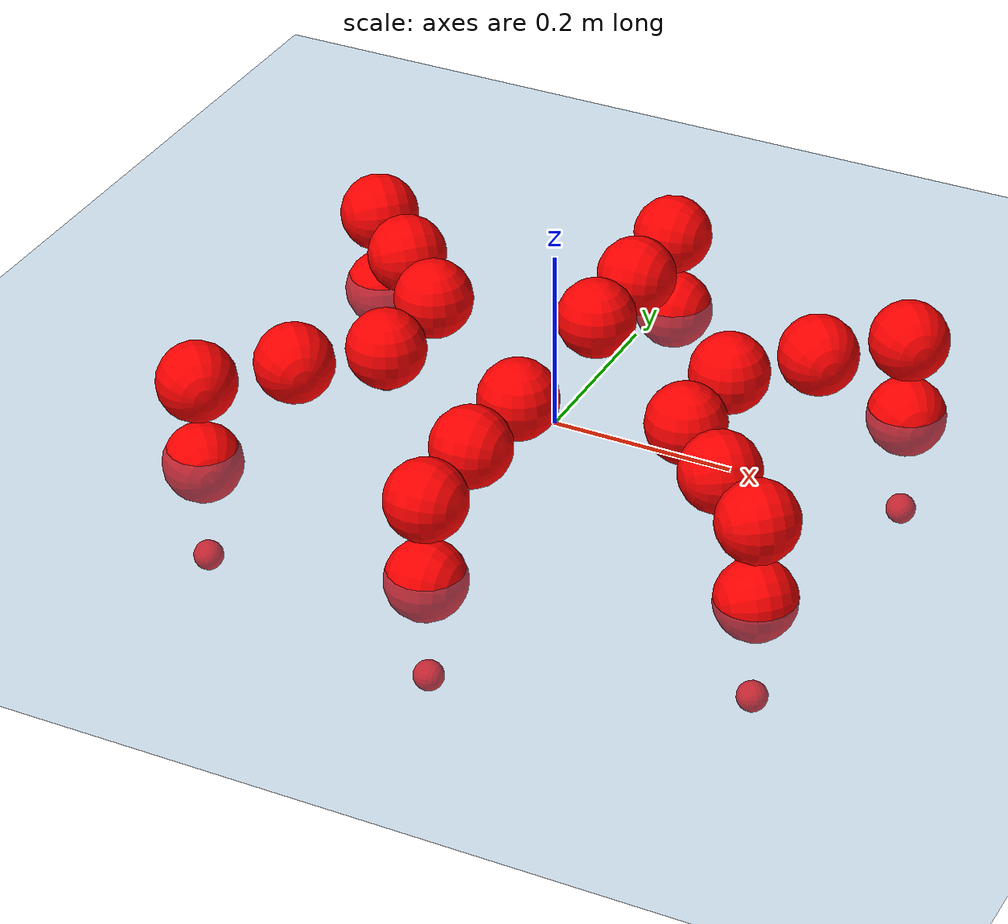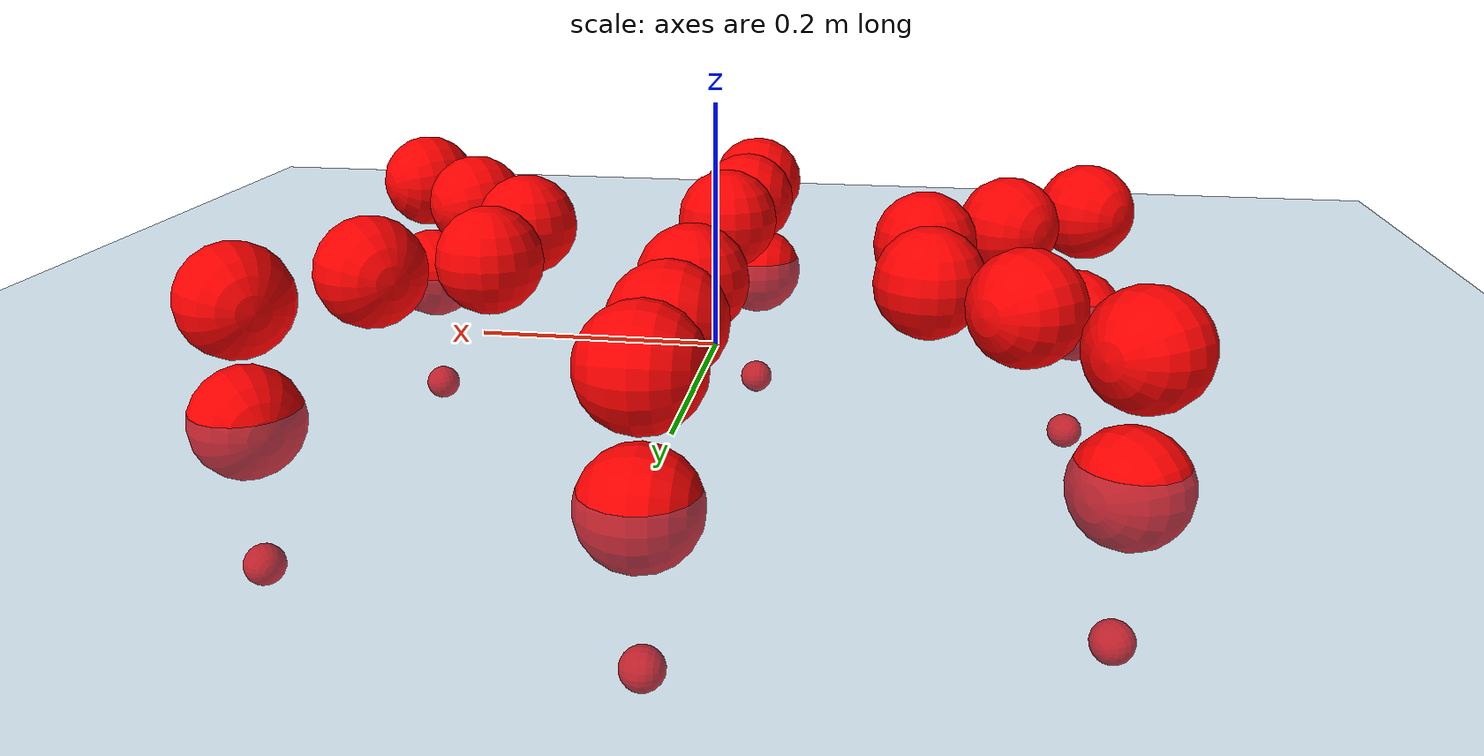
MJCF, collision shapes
<mujoco model="Golem">
  <compiler angle="radian" assetdir="assets" balanceinertia="true" inertiafromgeom="false"/>

  <option timestep="0.005" density="1.2" viscosity="2e-05"/>

  <size nkey="1"/>

  <visual>
    <quality shadowsize="8192"/>
    <map shadowclip="0.5"/>
  </visual>

  <default>
    <default class="/">
      <joint armature="0.01" damping="0.01" frictionloss="0.01"/>
      <geom contype="0" conaffinity="0" group="1" solref="-1000 -80"/>
      <site size="0.01 0.005 0.005" group="5"/>
      <general forcelimited="true" biastype="affine" gainprm="25" biasprm="0 -25 -0.5"/>
      <default class="visual">
        <geom type="mesh" group="2"/>
      </default>
      <default class="collision">
        <geom group="3"/>
      </default>
      <default class="foot">
        <geom size="0.01 0 0" condim="6" group="4" priority="1" solimp="0.015 1 0.01"/>
      </default>
      <default class="reward_collision_sphere">
        <geom group="5" rgba="1 0 0 1"/>
      </default>
    </default>
  </default>

  <asset>
    <texture type="skybox" colorspace="auto" name="//unnamed_texture_0" builtin="gradient" rgb1="0.95 0.95 0.95" rgb2="0.95 0.95 0.95" width="100" height="600"/>
    <texture type="2d" colorspace="auto" name="texplane" builtin="checker" rgb1="0.345 0.575 0.748" rgb2="0.345 0.575 0.748" markrgb="1 1 1" width="512" height="512"/>
    <material name="MatPlane" class="/" texture="texplane" texuniform="true" texrepeat="2 2" specular="0.9"/>
    <mesh name="body" class="/" file="body.stl" scale="0.001 0.001 0.001"/>
    <mesh name="coxa" class="/" file="coxa.stl" scale="0.001 0.001 0.001"/>
    <mesh name="femur" class="/" file="femur.stl" scale="0.001 0.001 0.001"/>
    <mesh name="tibia" class="/" file="tibia.stl" scale="0.001 0.001 0.001"/>
    <mesh name="tarsus" class="/" file="tarsus.stl" scale="0.001 0.001 0.001"/>
  </asset>

  <worldbody>
    <geom name="floor" class="/" size="100 100 0.125" type="plane" group="0" material="MatPlane"/>
    <light name="toplight_shadow" class="/" pos="0 0 5" dir="0.0990148 0.0990148 -0.990148" type="directional" ambient="0.04 0.04 0.04" diffuse="0.55 0.55 0.55" specular="0.12 0.12 0.12"/>
    <light name="toplight_fill" class="/" pos="0 0 5" dir="0.0990148 0.0990148 -0.990148" type="directional" castshadow="false" ambient="0.04 0.04 0.04" diffuse="0.3 0.3 0.3" specular="0.08 0.08 0.08"/>
    <body name="trunk" pos="0.00090083 -0.000790116 0.000847414" quat="0.999998 -0.00104181 -0.000879136 0.00133835">
      <inertial pos="-0.00210978 -0.00497775 -0.00526044" quat="0.999993 -0.00150392 0.00295259 0.00186074" mass="4.84643" diaginertia="0.0166947 0.0072225 0.0283593"/>
      <joint name="//unnamed_joint_0" type="free"/>
      <geom name="//unnamed_geom_1" class="/" pos="0 0 0.0778119" quat="1 0 0 0" type="mesh" rgba="0.9 0.9 0.9 1" mesh="body"/>
      <site name="imu" class="/" pos="0.143937 -0.0105761 0.115673" size="0.0107993"/>
      <camera name="track" class="/" pos="0 -1.86355 0" quat="0.707107 0.707107 0 0" mode="trackcom"/>
      <camera name="ego_camera" class="/" pos="0.141987 0 0.121581" quat="-0.5 -0.5 0.5 0.5"/>
      <body name="coxa_RR" pos="-0.192169 -0.0798292 0.077976" quat="0.382533 -0.000350203 0.00121771 -0.923941">
        <inertial pos="3.07785e-05 0.00164631 0.00159707" quat="0.999677 -0.0175807 -0.0155273 0.00981881" mass="0.228634" diaginertia="0.0150271 0.00693152 0.024746"/>
        <joint name="coxa_joint_RR" class="/" pos="0 0 0" axis="-0.00796415 0.00168897 -0.999967" stiffness="0.00114881" range="-3.15082 3.23823" armature="0.00827747" damping="0" frictionloss="0.0112423"/>
        <geom name="//unnamed_geom_2" class="/" type="mesh" rgba="0.2 0.2 0.2 1" mesh="coxa"/>
        <geom name="//unnamed_geom_3" class="reward_collision_sphere" size="0.0431972" pos="-0.0327663 0 0"/>
        <body name="femur_RR" pos="0.0659322 -0.0025143 0.000676283" quat="0.499792 -0.499915 0.500165 0.500128">
          <inertial pos="-0.00325828 0.00166092 0.000324667" quat="0.999893 0.00658043 0.0119361 0.00524124" mass="0.245133" diaginertia="0.0151885 0.00685026 0.0268512"/>
          <joint name="femur_joint_RR" class="/" pos="0 0 0" axis="0.00282594 -0.00413725 -0.999987" range="-3.12763 3.13598" armature="0.0106501" damping="0.0414524" frictionloss="0.0117663"/>
          <geom name="//unnamed_geom_4" class="/" type="mesh" rgba="0.9 0.9 0.9 1" mesh="femur"/>
          <geom name="//unnamed_geom_5" class="reward_collision_sphere" size="0.0431972"/>
          <body name="tibia_RR" pos="0.00109794 -0.104447 0.000753626" quat="-0.000488062 1 7.97759e-05 -3.1214e-05">
            <inertial pos="0.00108243 0.00230049 0.0010334" quat="0.999963 -0.00690133 -0.000830985 -0.00498733" mass="0.234451" diaginertia="0.0157985 0.00685637 0.02595"/>
            <joint name="tibia_joint_RR" class="/" pos="0 0 0" axis="0.000167849 0.00933191 0.999956" range="-3.17768 3.14204" armature="0.0107423" damping="0.0140538" frictionloss="0.0106906"/>
            <geom name="//unnamed_geom_6" class="/" type="mesh" rgba="0.2 0.2 0.2 1" mesh="tibia"/>
            <geom name="//unnamed_geom_7" class="reward_collision_sphere" size="0.0431972"/>
            <body name="tarsus_RR" pos="0.0989353 -0.00133113 -0.00075577" quat="1 3.44156e-05 2.60157e-05 0.000124576">
              <inertial pos="0.0684566 -0.00101381 -0.00177218" quat="0.50046 0.496721 0.501348 0.501456" mass="0.241598" diaginertia="0.014407 0.00662069 0.0256503"/>
              <joint name="tarsus_joint_RR" class="/" pos="0 0 0" axis="0.0108327 -0.017754 0.999784" stiffness="0.00354866" range="-3.14392 3.14081" armature="0.0118585" damping="0.0512529" frictionloss="0.0116724"/>
              <geom name="//unnamed_geom_8" class="/" type="mesh" rgba="0.9 0.9 0.9 1" mesh="tarsus"/>
              <geom name="foot_1" class="foot" size="0.00937281" pos="0.122327 0 0" quat="0 -0.707107 0 0.707107"/>
              <geom name="//unnamed_geom_10" class="reward_collision_sphere" size="0.0431972"/>
              <geom name="//unnamed_geom_11" class="reward_collision_sphere" size="0.016199" pos="0.117412 0 0"/>
              <site name="foot_1" class="foot" pos="0.122327 0 0" quat="0 -0.707107 0 0.707107" size="0.0107993"/>
            </body>
          </body>
        </body>
      </body>
      <body name="coxa_RM" pos="0.00319147 -0.126071 0.0834872" quat="0.706911 -8.63653e-05 0.000861989 -0.707302">
        <inertial pos="0.0029746 0.00093577 -0.00225321" quat="1 -0.000153289 0.000730279 0.000383631" mass="0.239127" diaginertia="0.0146323 0.00683487 0.0255094"/>
        <joint name="coxa_joint_RM" class="/" pos="0 0 0" axis="0.000847434 0.00184254 -0.999998" stiffness="0.00367735" range="-3.16908 3.15791" armature="0.0103461" damping="0.0188884" frictionloss="0.0109738"/>
        <geom name="//unnamed_geom_12" class="/" type="mesh" rgba="0.2 0.2 0.2 1" mesh="coxa"/>
        <geom name="//unnamed_geom_13" class="reward_collision_sphere" size="0.0431972" pos="-0.0327663 0 0"/>
        <body name="femur_RM" pos="0.063757 -0.00450767 -0.00286623" quat="0.499941 -0.500283 0.499785 0.49999">
          <inertial pos="0.00165153 -0.000827002 0.00195953" quat="0.999758 -0.00684276 0.0190694 0.00851805" mass="0.272688" diaginertia="0.0162301 0.00752016 0.0273321"/>
          <joint name="femur_joint_RM" class="/" pos="0 0 0" axis="0.00077382 0.000418818 -1" range="-3.04616 3.0887" armature="0.0114185" damping="0.0277271" frictionloss="0.0107663"/>
          <geom name="//unnamed_geom_14" class="/" type="mesh" rgba="0.9 0.9 0.9 1" mesh="femur"/>
          <geom name="//unnamed_geom_15" class="reward_collision_sphere" size="0.0431972"/>
          <body name="tibia_RM" pos="0.00281037 -0.101557 0.00216157" quat="-0.00110618 0.999997 -2.86883e-05 0.00217783">
            <inertial pos="0.00052461 0.000932188 -0.00251402" quat="0.99998 0.00253998 0.00360962 0.00445071" mass="0.253392" diaginertia="0.015152 0.0071256 0.027541"/>
            <joint name="tibia_joint_RM" class="/" pos="0 0 0" axis="0.0108429 -0.00276731 0.999937" stiffness="0.0194822" range="-3.13431 3.13321" armature="0.00960122" damping="0.0121685" frictionloss="0.00942256"/>
            <geom name="//unnamed_geom_16" class="/" type="mesh" rgba="0.2 0.2 0.2 1" mesh="tibia"/>
            <geom name="//unnamed_geom_17" class="reward_collision_sphere" size="0.0431972"/>
            <body name="tarsus_RM" pos="0.0945475 0.00138657 0.001392" quat="0.999999 -0.000567808 -0.000303696 -0.00138656">
              <inertial pos="0.0657316 0.00166839 -0.000100794" quat="0.50059 0.507427 0.500076 0.491783" mass="0.254519" diaginertia="0.0154386 0.00710263 0.0272971"/>
              <joint name="tarsus_joint_RM" class="/" pos="0 0 0" axis="-0.000410808 0.0108491 0.999941" stiffness="0.00550605" range="-3.12823 3.04287" armature="0.0104493" damping="0.0101189" frictionloss="0.0133961"/>
              <geom name="//unnamed_geom_18" class="/" type="mesh" rgba="0.9 0.9 0.9 1" mesh="tarsus"/>
              <geom name="foot_2" class="foot" size="0.0118898" pos="0.122327 0 0" quat="0 -0.707107 0 0.707107"/>
              <geom name="//unnamed_geom_20" class="reward_collision_sphere" size="0.0431972"/>
              <geom name="//unnamed_geom_21" class="reward_collision_sphere" size="0.016199" pos="0.117412 0 0"/>
              <site name="foot_2" class="foot" pos="0.122327 0 0" quat="0 -0.707107 0 0.707107" size="0.0107993"/>
            </body>
          </body>
        </body>
      </body>
      <body name="coxa_RF" pos="0.19736 -0.0794387 0.0809125" quat="0.924028 0.00135744 0.000567459 -0.382322">
        <inertial pos="-0.00328132 -0.00354708 0.000212443" quat="0.999999 -0.000623083 -0.000661965 -0.000765871" mass="0.256895" diaginertia="0.0148924 0.00694674 0.0262149"/>
        <joint name="coxa_joint_RF" class="/" pos="0 0 0" axis="-0.00959697 0.000434221 -0.999954" stiffness="0.0286549" range="-3.11099 3.21045" armature="0.00961655" damping="0.00082886" frictionloss="0.0119266"/>
        <geom name="//unnamed_geom_22" class="/" type="mesh" rgba="0.2 0.2 0.2 1" mesh="coxa"/>
        <geom name="//unnamed_geom_23" class="reward_collision_sphere" size="0.0431972" pos="-0.0327663 0 0"/>
        <body name="femur_RF" pos="0.0648162 -0.000985186 0.00173828" quat="0.500074 -0.500869 0.500124 0.498931">
          <inertial pos="0.00127747 -0.000556315 -0.00432579" quat="0.999934 -0.00660393 -0.00537289 -0.00770325" mass="0.264928" diaginertia="0.0164268 0.00737161 0.0291977"/>
          <joint name="femur_joint_RF" class="/" pos="0 0 0" axis="-0.0126735 0.01954 -0.999729" range="-3.17288 3.12517" armature="0.00801076" damping="0.0157748" frictionloss="0.0101247"/>
          <geom name="//unnamed_geom_24" class="/" type="mesh" rgba="0.9 0.9 0.9 1" mesh="femur"/>
          <geom name="//unnamed_geom_25" class="reward_collision_sphere" size="0.0431972"/>
          <body name="tibia_RF" pos="-0.00396343 -0.0993361 0.000705816" quat="4.57845e-05 1 -0.000285093 -0.000276631">
            <inertial pos="0.000831686 0.000294732 0.00024024" quat="0.999971 -0.0058684 -0.00217165 0.00426903" mass="0.248426" diaginertia="0.0163045 0.00712674 0.025352"/>
            <joint name="tibia_joint_RF" class="/" pos="0 0 0" axis="-0.00453842 0.00338547 0.999984" stiffness="0.00205112" range="-3.15101 3.0672" armature="0.0119987" damping="0.00326068" frictionloss="0.0119873"/>
            <geom name="//unnamed_geom_26" class="/" type="mesh" rgba="0.2 0.2 0.2 1" mesh="tibia"/>
            <geom name="//unnamed_geom_27" class="reward_collision_sphere" size="0.0431972"/>
            <body name="tarsus_RF" pos="0.0927299 -0.000646279 -0.000687955" quat="0.999997 -0.00202529 -0.00104495 -8.62588e-06">
              <inertial pos="0.0636313 0.000251376 0.000996111" quat="0.500215 0.499996 0.500201 0.499588" mass="0.250372" diaginertia="0.0153472 0.00691509 0.0274171"/>
              <joint name="tarsus_joint_RF" class="/" pos="0 0 0" axis="0.0064678 0.00973815 0.999932" range="-3.15166 3.11627" armature="0.0108213" damping="0.0122604" frictionloss="0.0109124"/>
              <geom name="//unnamed_geom_28" class="/" type="mesh" rgba="0.9 0.9 0.9 1" mesh="tarsus"/>
              <geom name="foot_3" class="foot" size="0.00963917" pos="0.122327 0 0" quat="0 -0.707107 0 0.707107"/>
              <geom name="//unnamed_geom_30" class="reward_collision_sphere" size="0.0431972"/>
              <geom name="//unnamed_geom_31" class="reward_collision_sphere" size="0.016199" pos="0.117412 0 0"/>
              <site name="foot_3" class="foot" pos="0.122327 0 0" quat="0 -0.707107 0 0.707107" size="0.0107993"/>
            </body>
          </body>
        </body>
      </body>
      <body name="coxa_LR" pos="-0.196541 0.0817628 0.0762145" quat="0.383288 -0.00122573 -0.000142021 0.923628">
        <inertial pos="-4.74803e-05 -0.00065152 0.00264116" quat="1 0.000280192 -0.000239167 -3.16e-05" mass="0.247696" diaginertia="0.0160175 0.00722541 0.0281458"/>
        <joint name="coxa_joint_LR" class="/" pos="0 0 0" axis="-0.0123074 0.00169371 -0.999923" range="-3.17858 3.13476" armature="0.0100534" damping="0.00346609" frictionloss="0.0105709"/>
        <geom name="//unnamed_geom_32" class="/" type="mesh" rgba="0.2 0.2 0.2 1" mesh="coxa"/>
        <geom name="//unnamed_geom_33" class="reward_collision_sphere" size="0.0431972" pos="-0.0327663 0 0"/>
        <body name="femur_LR" pos="0.0620851 0.000482723 0.00379599" quat="0.499338 -0.500166 0.499682 0.500812">
          <inertial pos="-0.000211555 -0.0022701 0.0010597" quat="0.99996 0.00285744 0.00526584 0.00662956" mass="0.258608" diaginertia="0.0157552 0.00695652 0.026651"/>
          <joint name="femur_joint_LR" class="/" pos="0 0 0" axis="0.0149253 0.00577912 0.999872" stiffness="0.00715664" range="-3.07955 3.08177" armature="0.0112063" damping="0.0227171" frictionloss="0.00949166"/>
          <geom name="//unnamed_geom_34" class="/" type="mesh" rgba="0.9 0.9 0.9 1" mesh="femur"/>
          <geom name="//unnamed_geom_35" class="reward_collision_sphere" size="0.0431972"/>
          <body name="tibia_LR" pos="0.00226537 -0.102564 0.00048429" quat="0.00108559 0.999999 0.000464613 -0.000315873">
            <inertial pos="0.00472742 -0.00220204 0.0034913" quat="0.999933 0.0112951 -0.000180043 0.00233431" mass="0.251847" diaginertia="0.0150175 0.00661124 0.0258749"/>
            <joint name="tibia_joint_LR" class="/" pos="0 0 0" axis="-0.000162846 -0.000661406 -1" stiffness="0.00480865" range="-3.20831 3.11003" armature="0.0101949" damping="0.0112379" frictionloss="0.0096768"/>
            <geom name="//unnamed_geom_36" class="/" type="mesh" rgba="0.2 0.2 0.2 1" mesh="tibia"/>
            <geom name="//unnamed_geom_37" class="reward_collision_sphere" size="0.0431972"/>
            <body name="tarsus_LR" pos="0.0972173 -0.000205883 0.00244348" quat="1 -0.000222485 0.000226465 0.000220807">
              <inertial pos="0.0674591 -0.00105708 0.00246527" quat="0.499127 0.500899 0.502737 0.497219" mass="0.238546" diaginertia="0.0148596 0.00674366 0.025524"/>
              <joint name="tarsus_joint_LR" class="/" pos="0 0 0" axis="-0.000701381 -0.0178633 -0.99984" range="-3.18795 3.16764" armature="0.00940176" damping="0.0216154" frictionloss="0.0100952"/>
              <geom name="//unnamed_geom_38" class="/" type="mesh" rgba="0.9 0.9 0.9 1" mesh="tarsus"/>
              <geom name="foot_4" class="foot" size="0.011854" pos="0.122327 0 0" quat="0.707107 0 -0.707107 0"/>
              <geom name="//unnamed_geom_40" class="reward_collision_sphere" size="0.0431972"/>
              <geom name="//unnamed_geom_41" class="reward_collision_sphere" size="0.016199" pos="0.117412 0 0"/>
              <site name="foot_4" class="foot" pos="0.122327 0 0" quat="0.707107 0 -0.707107 0" size="0.0107993"/>
            </body>
          </body>
        </body>
      </body>
      <body name="coxa_LM" pos="0.0029503 0.125028 0.0801375" quat="0.706698 -0.000226818 -0.000651788 0.707515">
        <inertial pos="-0.0032974 -0.00444616 0.00250334" quat="1 6.55572e-05 3.57104e-05 -1.73079e-05" mass="0.253368" diaginertia="0.0161119 0.0070713 0.0268562"/>
        <joint name="coxa_joint_LM" class="/" pos="0 0 0" axis="0.00615704 0.0135527 -0.999889" stiffness="0.00671288" range="-3.13562 3.13484" armature="0.00956969" damping="0.0326549" frictionloss="0.0110019"/>
        <geom name="//unnamed_geom_42" class="/" type="mesh" rgba="0.2 0.2 0.2 1" mesh="coxa"/>
        <geom name="//unnamed_geom_43" class="reward_collision_sphere" size="0.0431972" pos="-0.0327663 0 0"/>
        <body name="femur_LM" pos="0.0677005 -0.000149855 -0.000904521" quat="0.499202 -0.500136 0.499058 0.501599">
          <inertial pos="0.000353724 0.000265485 -0.00264058" quat="0.999975 -0.00649523 0.000285989 0.00287589" mass="0.259897" diaginertia="0.0157622 0.00728389 0.0282883"/>
          <joint name="femur_joint_LM" class="/" pos="0 0 0" axis="0.00380448 -0.0124608 0.999915" range="-3.10202 3.13209" armature="0.0132754" damping="0.0174227" frictionloss="0.0115271"/>
          <geom name="//unnamed_geom_44" class="/" type="mesh" rgba="0.9 0.9 0.9 1" mesh="femur"/>
          <geom name="//unnamed_geom_45" class="reward_collision_sphere" size="0.0431972"/>
          <body name="tibia_LM" pos="-0.000944273 -0.0971418 0.0010978" quat="7.47515e-05 1 -0.000472366 -8.28197e-05">
            <inertial pos="0.00233157 -0.00267027 0.00121819" quat="0.99994 0.00555273 0.00377942 0.00862837" mass="0.261489" diaginertia="0.0156451 0.00683345 0.0251912"/>
            <joint name="tibia_joint_LM" class="/" pos="0 0 0" axis="0.00080191 -0.00091608 -0.999999" range="-3.18147 3.11917" armature="0.0109399" damping="0.0194309" frictionloss="0.0106984"/>
            <geom name="//unnamed_geom_46" class="/" type="mesh" rgba="0.2 0.2 0.2 1" mesh="tibia"/>
            <geom name="//unnamed_geom_47" class="reward_collision_sphere" size="0.0431972"/>
            <body name="tarsus_LM" pos="0.0949194 0.00110672 0.00224839" quat="1 0.000395727 7.03372e-05 7.25794e-05">
              <inertial pos="0.0621201 -0.000851573 -0.000376667" quat="0.496609 0.501184 0.501556 0.500635" mass="0.229268" diaginertia="0.0152374 0.00693992 0.0264487"/>
              <joint name="tarsus_joint_LM" class="/" pos="0 0 0" axis="0.00110605 0.00783251 -0.999969" range="-3.14503 3.1494" armature="0.0107969" damping="0" frictionloss="0.0106779"/>
              <geom name="//unnamed_geom_48" class="/" type="mesh" rgba="0.9 0.9 0.9 1" mesh="tarsus"/>
              <geom name="foot_5" class="foot" size="0.0118199" pos="0.122327 0 0" quat="0.707107 0 -0.707107 0"/>
              <geom name="//unnamed_geom_50" class="reward_collision_sphere" size="0.0431972"/>
              <geom name="//unnamed_geom_51" class="reward_collision_sphere" size="0.016199" pos="0.117412 0 0"/>
              <site name="foot_5" class="foot" pos="0.122327 0 0" quat="0.707107 0 -0.707107 0" size="0.0107993"/>
            </body>
          </body>
        </body>
      </body>
      <body name="coxa_LF" pos="0.196139 0.0781081 0.0785592" quat="0.923874 0.000104594 7.18479e-06 0.382697">
        <inertial pos="-0.000775318 0.00263502 0.000531699" quat="0.999999 -0.000961222 -0.000244874 -0.000755709" mass="0.252786" diaginertia="0.0153206 0.00679967 0.0258035"/>
        <joint name="coxa_joint_LF" class="/" pos="0 0 0" axis="0.0161416 0.0116958 -0.999801" range="-3.10658 3.10953" armature="0.0118881" damping="0.00865863" frictionloss="0.010622"/>
        <geom name="//unnamed_geom_52" class="/" type="mesh" rgba="0.2 0.2 0.2 1" mesh="coxa"/>
        <geom name="//unnamed_geom_53" class="reward_collision_sphere" size="0.0431972" pos="-0.0327663 0 0"/>
        <body name="femur_LF" pos="0.0643748 -0.00470162 0.00488792" quat="0.499127 -0.499657 0.500204 0.50101">
          <inertial pos="0.00231037 0.00129523 -0.0025026" quat="0.999999 -0.00105506 0.000606029 -0.000362337" mass="0.247287" diaginertia="0.015245 0.00709757 0.0274383"/>
          <joint name="femur_joint_LF" class="/" pos="0 0 0" axis="-0.0099941 -0.00201692 0.999948" range="-3.1409 3.20058" armature="0.0117358" damping="0.0138066" frictionloss="0.0121928"/>
          <geom name="//unnamed_geom_54" class="/" type="mesh" rgba="0.9 0.9 0.9 1" mesh="femur"/>
          <geom name="//unnamed_geom_55" class="reward_collision_sphere" size="0.0431972"/>
          <body name="tibia_LF" pos="0.00358429 -0.103425 0.00134678" quat="0.000441952 0.999999 -9.69939e-05 -0.00114266">
            <inertial pos="0.00235451 0.00133712 0.0023553" quat="0.999872 0.0112751 -0.0067034 0.00914983" mass="0.257532" diaginertia="0.0156203 0.00717891 0.0273706"/>
            <joint name="tibia_joint_LF" class="/" pos="0 0 0" axis="0.00279892 0.00194185 -0.999994" range="-3.14289 3.12336" armature="0.0135037" damping="0.0282642" frictionloss="0.0109114"/>
            <geom name="//unnamed_geom_56" class="/" type="mesh" rgba="0.2 0.2 0.2 1" mesh="tibia"/>
            <geom name="//unnamed_geom_57" class="reward_collision_sphere" size="0.0431972"/>
            <body name="tarsus_LF" pos="0.0932947 0.00142539 0.000206008" quat="0.999997 0.00228454 -9.46539e-05 -0.000845531">
              <inertial pos="0.064021 0.00290009 0.00128369" quat="0.502607 0.500044 0.500424 0.496908" mass="0.259764" diaginertia="0.0153301 0.00717561 0.0261979"/>
              <joint name="tarsus_joint_LF" class="/" pos="0 0 0" axis="-0.0131045 -0.00351567 -0.999908" stiffness="0.00155436" range="-3.18759 3.17898" armature="0.0117923" damping="0" frictionloss="0.010814"/>
              <geom name="//unnamed_geom_58" class="/" type="mesh" rgba="0.9 0.9 0.9 1" mesh="tarsus"/>
              <geom name="foot_6" class="foot" size="0.0114852" pos="0.122327 0 0" quat="0.707107 0 -0.707107 0"/>
              <geom name="//unnamed_geom_60" class="reward_collision_sphere" size="0.0431972"/>
              <geom name="//unnamed_geom_61" class="reward_collision_sphere" size="0.016199" pos="0.117412 0 0"/>
              <site name="foot_6" class="foot" pos="0.122327 0 0" quat="0.707107 0 -0.707107 0" size="0.0107993"/>
            </body>
          </body>
        </body>
      </body>
    </body>
  </worldbody>

  <contact>
    <pair class="/" geom1="floor" geom2="foot_1" name="//unnamed_contact_0"/>
    <pair class="/" geom1="floor" geom2="foot_2" name="//unnamed_contact_1"/>
    <pair class="/" geom1="floor" geom2="foot_3" name="//unnamed_contact_2"/>
    <pair class="/" geom1="floor" geom2="foot_4" name="//unnamed_contact_3"/>
    <pair class="/" geom1="floor" geom2="foot_5" name="//unnamed_contact_4"/>
    <pair class="/" geom1="floor" geom2="foot_6" name="//unnamed_contact_5"/>
  </contact>

  <actuator>
    <general name="coxa_joint_RR" class="/" joint="coxa_joint_RR" forcerange="-8.39091 8.39091" gainprm="26.1585" biasprm="0 -26.1585 -0.53209"/>
    <general name="femur_joint_RR" class="/" joint="femur_joint_RR" forcerange="-7.86865 7.86865" gainprm="26.1585" biasprm="0 -26.1585 -0.53209"/>
    <general name="tibia_joint_RR" class="/" joint="tibia_joint_RR" forcerange="-8.0591 8.0591" gainprm="26.1585" biasprm="0 -26.1585 -0.53209"/>
    <general name="tarsus_joint_RR" class="/" joint="tarsus_joint_RR" forcerange="-7.14171 7.14171" gainprm="26.1585" biasprm="0 -26.1585 -0.53209"/>
    <general name="coxa_joint_RM" class="/" joint="coxa_joint_RM" forcerange="-7.16833 7.16833" gainprm="26.1585" biasprm="0 -26.1585 -0.53209"/>
    <general name="femur_joint_RM" class="/" joint="femur_joint_RM" forcerange="-8.31407 8.31407" gainprm="26.1585" biasprm="0 -26.1585 -0.53209"/>
    <general name="tibia_joint_RM" class="/" joint="tibia_joint_RM" forcerange="-7.99912 7.99912" gainprm="26.1585" biasprm="0 -26.1585 -0.53209"/>
    <general name="tarsus_joint_RM" class="/" joint="tarsus_joint_RM" forcerange="-8.52208 8.52208" gainprm="26.1585" biasprm="0 -26.1585 -0.53209"/>
    <general name="coxa_joint_RF" class="/" joint="coxa_joint_RF" forcerange="-8.4584 8.4584" gainprm="26.1585" biasprm="0 -26.1585 -0.53209"/>
    <general name="femur_joint_RF" class="/" joint="femur_joint_RF" forcerange="-8.19473 8.19473" gainprm="26.1585" biasprm="0 -26.1585 -0.53209"/>
    <general name="tibia_joint_RF" class="/" joint="tibia_joint_RF" forcerange="-7.67818 7.67818" gainprm="26.1585" biasprm="0 -26.1585 -0.53209"/>
    <general name="tarsus_joint_RF" class="/" joint="tarsus_joint_RF" forcerange="-8.37002 8.37002" gainprm="26.1585" biasprm="0 -26.1585 -0.53209"/>
    <general name="coxa_joint_LR" class="/" joint="coxa_joint_LR" forcerange="-7.31538 7.31538" gainprm="26.1585" biasprm="0 -26.1585 -0.53209"/>
    <general name="femur_joint_LR" class="/" joint="femur_joint_LR" forcerange="-7.63415 7.63415" gainprm="26.1585" biasprm="0 -26.1585 -0.53209"/>
    <general name="tibia_joint_LR" class="/" joint="tibia_joint_LR" forcerange="-8.96205 8.96205" gainprm="26.1585" biasprm="0 -26.1585 -0.53209"/>
    <general name="tarsus_joint_LR" class="/" joint="tarsus_joint_LR" forcerange="-6.60565 6.60565" gainprm="26.1585" biasprm="0 -26.1585 -0.53209"/>
    <general name="coxa_joint_LM" class="/" joint="coxa_joint_LM" forcerange="-8.21407 8.21407" gainprm="26.1585" biasprm="0 -26.1585 -0.53209"/>
    <general name="femur_joint_LM" class="/" joint="femur_joint_LM" forcerange="-7.63484 7.63484" gainprm="26.1585" biasprm="0 -26.1585 -0.53209"/>
    <general name="tibia_joint_LM" class="/" joint="tibia_joint_LM" forcerange="-7.95519 7.95519" gainprm="26.1585" biasprm="0 -26.1585 -0.53209"/>
    <general name="tarsus_joint_LM" class="/" joint="tarsus_joint_LM" forcerange="-7.3331 7.3331" gainprm="26.1585" biasprm="0 -26.1585 -0.53209"/>
    <general name="coxa_joint_LF" class="/" joint="coxa_joint_LF" forcerange="-8.04028 8.04028" gainprm="26.1585" biasprm="0 -26.1585 -0.53209"/>
    <general name="femur_joint_LF" class="/" joint="femur_joint_LF" forcerange="-7.95645 7.95645" gainprm="26.1585" biasprm="0 -26.1585 -0.53209"/>
    <general name="tibia_joint_LF" class="/" joint="tibia_joint_LF" forcerange="-8.52403 8.52403" gainprm="26.1585" biasprm="0 -26.1585 -0.53209"/>
    <general name="tarsus_joint_LF" class="/" joint="tarsus_joint_LF" forcerange="-7.3794 7.3794" gainprm="26.1585" biasprm="0 -26.1585 -0.53209"/>
  </actuator>

  <sensor>
    <gyro site="imu" name="imu_angular_velocity"/>
    <velocimeter site="imu" name="imu_linear_velocity"/>
    <framelinvel objtype="site" objname="foot_1" name="foot_1_global_linear_velocity"/>
    <framelinvel objtype="site" objname="foot_2" name="foot_2_global_linear_velocity"/>
    <framelinvel objtype="site" objname="foot_3" name="foot_3_global_linear_velocity"/>
    <framelinvel objtype="site" objname="foot_4" name="foot_4_global_linear_velocity"/>
    <framelinvel objtype="site" objname="foot_5" name="foot_5_global_linear_velocity"/>
    <framelinvel objtype="site" objname="foot_6" name="foot_6_global_linear_velocity"/>
  </sensor>

  <keyframe>
    <key name="home" qpos="0 0 0.1457 1 0 0 0 0 0 0 0 0 0 0 0 0 0 0 0 0 0 0 0 0 0 0 0 0 0 0 0"/>
  </keyframe>
</mujoco>
